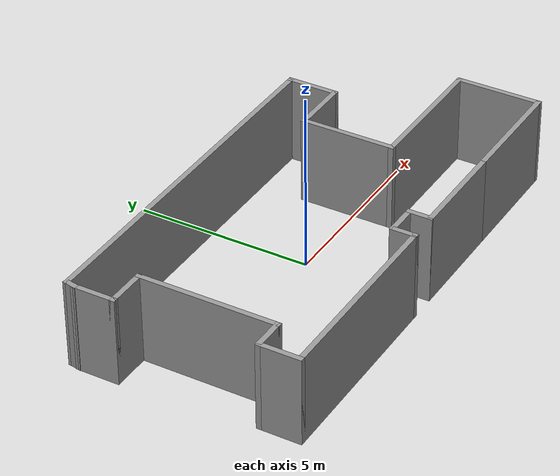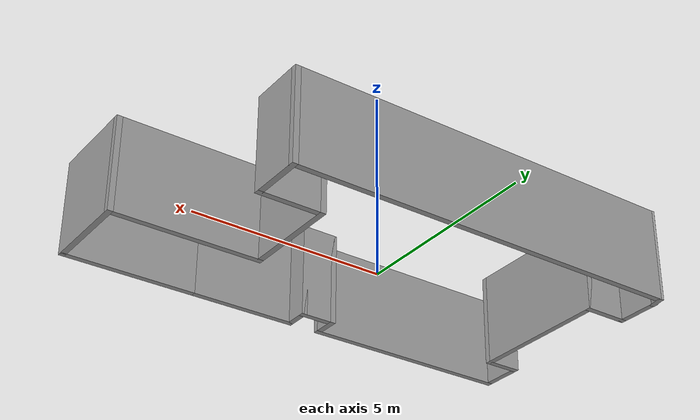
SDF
<?xml version='1.0'?>
<sdf version='1.7'>
  <model name='building_floorplan'>
    <pose>0 0 0 0 -0 0</pose>
    <link name='Wall_53'>
      <collision name='Wall_53_Collision'>
        <geometry>
          <box>
            <size>1.25 0.15 2.5</size>
          </box>
        </geometry>
        <pose>0 0 1.25 0 -0 0</pose>
      </collision>
      <visual name='Wall_53_Visual'>
        <pose>0 0 1.25 0 -0 0</pose>
        <geometry>
          <box>
            <size>1.25 0.15 2.5</size>
          </box>
        </geometry>
        <material>
          <script>
            <uri>file://media/materials/scripts/gazebo.material</uri>
            <name>Gazebo/Grey</name>
          </script>
          <ambient>1 1 1 1</ambient>
        </material>
        <meta>
          <layer>0</layer>
        </meta>
      </visual>
      <pose>-6.44337 2.08185 0 0 -0 -1.5708</pose>
    </link>
    <link name='Wall_54'>
      <collision name='Wall_54_Collision'>
        <geometry>
          <box>
            <size>1.25 0.15 2.5</size>
          </box>
        </geometry>
        <pose>0 0 1.25 0 -0 0</pose>
      </collision>
      <visual name='Wall_54_Visual'>
        <pose>0 0 1.25 0 -0 0</pose>
        <geometry>
          <box>
            <size>1.25 0.15 2.5</size>
          </box>
        </geometry>
        <material>
          <script>
            <uri>file://media/materials/scripts/gazebo.material</uri>
            <name>Gazebo/Grey</name>
          </script>
          <ambient>1 1 1 1</ambient>
        </material>
        <meta>
          <layer>0</layer>
        </meta>
      </visual>
      <pose>-5.89337 1.53185 0 0 -0 0</pose>
    </link>
    <link name='Wall_55'>
      <collision name='Wall_55_Collision'>
        <geometry>
          <box>
            <size>4 0.15 2.5</size>
          </box>
        </geometry>
        <pose>0 0 1.25 0 -0 0</pose>
      </collision>
      <visual name='Wall_55_Visual'>
        <pose>0 0 1.25 0 -0 0</pose>
        <geometry>
          <box>
            <size>4 0.15 2.5</size>
          </box>
        </geometry>
        <material>
          <script>
            <uri>file://media/materials/scripts/gazebo.material</uri>
            <name>Gazebo/Grey</name>
          </script>
          <ambient>1 1 1 1</ambient>
        </material>
        <meta>
          <layer>0</layer>
        </meta>
      </visual>
      <pose>-5.34337 -0.39315 0 0 -0 -1.5708</pose>
    </link>
    <link name='Wall_56'>
      <collision name='Wall_56_Collision'>
        <geometry>
          <box>
            <size>1 0.15 2.5</size>
          </box>
        </geometry>
        <pose>0 0 1.25 0 -0 0</pose>
      </collision>
      <visual name='Wall_56_Visual'>
        <pose>0 0 1.25 0 -0 0</pose>
        <geometry>
          <box>
            <size>1 0.15 2.5</size>
          </box>
        </geometry>
        <material>
          <script>
            <uri>file://media/materials/scripts/gazebo.material</uri>
            <name>Gazebo/Grey</name>
          </script>
          <ambient>1 1 1 1</ambient>
        </material>
        <meta>
          <layer>0</layer>
        </meta>
      </visual>
      <pose>-5.76837 -2.31815 0 0 -0 3.14159</pose>
    </link>
    <link name='Wall_57'>
      <collision name='Wall_57_Collision'>
        <geometry>
          <box>
            <size>1.25 0.15 2.5</size>
          </box>
        </geometry>
        <pose>0 0 1.25 0 -0 0</pose>
      </collision>
      <visual name='Wall_57_Visual'>
        <pose>0 0 1.25 0 -0 0</pose>
        <geometry>
          <box>
            <size>1.25 0.15 2.5</size>
          </box>
        </geometry>
        <material>
          <script>
            <uri>file://media/materials/scripts/gazebo.material</uri>
            <name>Gazebo/Grey</name>
          </script>
          <ambient>1 1 1 1</ambient>
        </material>
        <meta>
          <layer>0</layer>
        </meta>
      </visual>
      <pose>-6.19337 -2.86815 0 0 -0 -1.5708</pose>
    </link>
    <link name='Wall_58'>
      <collision name='Wall_58_Collision'>
        <geometry>
          <box>
            <size>5.75 0.15 2.5</size>
          </box>
        </geometry>
        <pose>0 0 1.25 0 -0 0</pose>
      </collision>
      <visual name='Wall_58_Visual'>
        <pose>0 0 1.25 0 -0 0</pose>
        <geometry>
          <box>
            <size>5.75 0.15 2.5</size>
          </box>
        </geometry>
        <material>
          <script>
            <uri>file://media/materials/scripts/gazebo.material</uri>
            <name>Gazebo/Grey</name>
          </script>
          <ambient>1 1 1 1</ambient>
        </material>
        <meta>
          <layer>0</layer>
        </meta>
      </visual>
      <pose>-3.39337 -3.41815 0 0 -0 0</pose>
    </link>
    <link name='Wall_59'>
      <collision name='Wall_59_Collision'>
        <geometry>
          <box>
            <size>0.75 0.15 2.5</size>
          </box>
        </geometry>
        <pose>0 0 1.25 0 -0 0</pose>
      </collision>
      <visual name='Wall_59_Visual'>
        <pose>0 0 1.25 0 -0 0</pose>
        <geometry>
          <box>
            <size>0.75 0.15 2.5</size>
          </box>
        </geometry>
        <material>
          <script>
            <uri>file://media/materials/scripts/gazebo.material</uri>
            <name>Gazebo/Grey</name>
          </script>
          <ambient>1 1 1 1</ambient>
        </material>
        <meta>
          <layer>0</layer>
        </meta>
      </visual>
      <pose>-0.593374 -3.11815 0 0 -0 1.5708</pose>
    </link>
    <link name='Wall_60'>
      <collision name='Wall_60_Collision'>
        <geometry>
          <box>
            <size>1 0.15 2.5</size>
          </box>
        </geometry>
        <pose>0 0 1.25 0 -0 0</pose>
      </collision>
      <visual name='Wall_60_Visual'>
        <pose>0 0 1.25 0 -0 0</pose>
        <geometry>
          <box>
            <size>1 0.15 2.5</size>
          </box>
        </geometry>
        <material>
          <script>
            <uri>file://media/materials/scripts/gazebo.material</uri>
            <name>Gazebo/Grey</name>
          </script>
          <ambient>1 1 1 1</ambient>
        </material>
        <meta>
          <layer>0</layer>
        </meta>
      </visual>
      <pose>-0.168374 -2.81815 0 0 -0 0</pose>
    </link>
    <link name='Wall_61'>
      <collision name='Wall_61_Collision'>
        <geometry>
          <box>
            <size>0.75 0.15 2.5</size>
          </box>
        </geometry>
        <pose>0 0 1.25 0 -0 0</pose>
      </collision>
      <visual name='Wall_61_Visual'>
        <pose>0 0 1.25 0 -0 0</pose>
        <geometry>
          <box>
            <size>0.75 0.15 2.5</size>
          </box>
        </geometry>
        <material>
          <script>
            <uri>file://media/materials/scripts/gazebo.material</uri>
            <name>Gazebo/Grey</name>
          </script>
          <ambient>1 1 1 1</ambient>
        </material>
        <meta>
          <layer>0</layer>
        </meta>
      </visual>
      <pose>0.256626 -3.11815 0 0 -0 -1.5708</pose>
    </link>
    <link name='Wall_62'>
      <collision name='Wall_62_Collision'>
        <geometry>
          <box>
            <size>3 0.15 2.5</size>
          </box>
        </geometry>
        <pose>0 0 1.25 0 -0 0</pose>
      </collision>
      <visual name='Wall_62_Visual'>
        <pose>0 0 1.25 0 -0 0</pose>
        <geometry>
          <box>
            <size>3 0.15 2.5</size>
          </box>
        </geometry>
        <material>
          <script>
            <uri>file://media/materials/scripts/gazebo.material</uri>
            <name>Gazebo/Grey</name>
          </script>
          <ambient>1 1 1 1</ambient>
        </material>
        <meta>
          <layer>0</layer>
        </meta>
      </visual>
      <pose>1.68163 -3.41815 0 0 -0 0</pose>
    </link>
    <link name='Wall_63'>
      <collision name='Wall_63_Collision'>
        <geometry>
          <box>
            <size>3.5 0.15 2.5</size>
          </box>
        </geometry>
        <pose>0 0 1.25 0 -0 0</pose>
      </collision>
      <visual name='Wall_63_Visual'>
        <pose>0 0 1.25 0 -0 0</pose>
        <geometry>
          <box>
            <size>3.5 0.15 2.5</size>
          </box>
        </geometry>
        <material>
          <script>
            <uri>file://media/materials/scripts/gazebo.material</uri>
            <name>Gazebo/Grey</name>
          </script>
          <ambient>1 1 1 1</ambient>
        </material>
        <meta>
          <layer>0</layer>
        </meta>
      </visual>
      <pose>4.78163 -3.41815 0 0 -0 0</pose>
    </link>
    <link name='Wall_64'>
      <collision name='Wall_64_Collision'>
        <geometry>
          <box>
            <size>2.5 0.15 2.5</size>
          </box>
        </geometry>
        <pose>0 0 1.25 0 -0 0</pose>
      </collision>
      <visual name='Wall_64_Visual'>
        <pose>0 0 1.25 0 -0 0</pose>
        <geometry>
          <box>
            <size>2.5 0.15 2.5</size>
          </box>
        </geometry>
        <material>
          <script>
            <uri>file://media/materials/scripts/gazebo.material</uri>
            <name>Gazebo/Grey</name>
          </script>
          <ambient>1 1 1 1</ambient>
        </material>
        <meta>
          <layer>0</layer>
        </meta>
      </visual>
      <pose>6.45663 -2.24315 0 0 -0 1.5708</pose>
    </link>
    <link name='Wall_65'>
      <collision name='Wall_65_Collision'>
        <geometry>
          <box>
            <size>4 0.15 2.5</size>
          </box>
        </geometry>
        <pose>0 0 1.25 0 -0 0</pose>
      </collision>
      <visual name='Wall_65_Visual'>
        <pose>0 0 1.25 0 -0 0</pose>
        <geometry>
          <box>
            <size>4 0.15 2.5</size>
          </box>
        </geometry>
        <material>
          <script>
            <uri>file://media/materials/scripts/gazebo.material</uri>
            <name>Gazebo/Grey</name>
          </script>
          <ambient>1 1 1 1</ambient>
        </material>
        <meta>
          <layer>0</layer>
        </meta>
      </visual>
      <pose>4.53163 -1.06815 0 0 -0 3.14159</pose>
    </link>
    <link name='Wall_66'>
      <collision name='Wall_66_Collision'>
        <geometry>
          <box>
            <size>2.75 0.15 2.5</size>
          </box>
        </geometry>
        <pose>0 0 1.25 0 -0 0</pose>
      </collision>
      <visual name='Wall_66_Visual'>
        <pose>0 0 1.25 0 -0 0</pose>
        <geometry>
          <box>
            <size>2.75 0.15 2.5</size>
          </box>
        </geometry>
        <material>
          <script>
            <uri>file://media/materials/scripts/gazebo.material</uri>
            <name>Gazebo/Grey</name>
          </script>
          <ambient>1 1 1 1</ambient>
        </material>
        <meta>
          <layer>0</layer>
        </meta>
      </visual>
      <pose>2.60663 0.23185 0 0 -0 1.5708</pose>
    </link>
    <link name='Wall_67'>
      <collision name='Wall_67_Collision'>
        <geometry>
          <box>
            <size>1.75 0.15 2.5</size>
          </box>
        </geometry>
        <pose>0 0 1.25 0 -0 0</pose>
      </collision>
      <visual name='Wall_67_Visual'>
        <pose>0 0 1.25 0 -0 0</pose>
        <geometry>
          <box>
            <size>1.75 0.15 2.5</size>
          </box>
        </geometry>
        <material>
          <script>
            <uri>file://media/materials/scripts/gazebo.material</uri>
            <name>Gazebo/Grey</name>
          </script>
          <ambient>1 1 1 1</ambient>
        </material>
        <meta>
          <layer>0</layer>
        </meta>
      </visual>
      <pose>3.40663 1.53185 0 0 -0 0</pose>
    </link>
    <link name='Wall_68'>
      <collision name='Wall_68_Collision'>
        <geometry>
          <box>
            <size>1.5 0.15 2.5</size>
          </box>
        </geometry>
        <pose>0 0 1.25 0 -0 0</pose>
      </collision>
      <visual name='Wall_68_Visual'>
        <pose>0 0 1.25 0 -0 0</pose>
        <geometry>
          <box>
            <size>1.5 0.15 2.5</size>
          </box>
        </geometry>
        <material>
          <script>
            <uri>file://media/materials/scripts/gazebo.material</uri>
            <name>Gazebo/Grey</name>
          </script>
          <ambient>1 1 1 1</ambient>
        </material>
        <meta>
          <layer>0</layer>
        </meta>
      </visual>
      <pose>4.20663 2.20685 0 0 -0 1.5708</pose>
    </link>
    <link name='Wall_69'>
      <collision name='Wall_69_Collision'>
        <geometry>
          <box>
            <size>10.75 0.15 2.5</size>
          </box>
        </geometry>
        <pose>0 0 1.25 0 -0 0</pose>
      </collision>
      <visual name='Wall_69_Visual'>
        <pose>0 0 1.25 0 -0 0</pose>
        <geometry>
          <box>
            <size>10.75 0.15 2.5</size>
          </box>
        </geometry>
        <material>
          <script>
            <uri>file://media/materials/scripts/gazebo.material</uri>
            <name>Gazebo/Grey</name>
          </script>
          <ambient>1 1 1 1</ambient>
        </material>
        <meta>
          <layer>0</layer>
        </meta>
      </visual>
      <pose>-1.09337 2.88185 0 0 -0 3.14159</pose>
    </link>
    <link name='Wall_70'>
      <collision name='Wall_70_Collision'>
        <geometry>
          <box>
            <size>0.404951 0.15 2.5</size>
          </box>
        </geometry>
        <pose>0 0 1.25 0 -0 0</pose>
      </collision>
      <visual name='Wall_70_Visual'>
        <pose>0 0 1.25 0 -0 0</pose>
        <geometry>
          <box>
            <size>0.404951 0.15 2.5</size>
          </box>
        </geometry>
        <material>
          <script>
            <uri>file://media/materials/scripts/gazebo.material</uri>
            <name>Gazebo/Grey</name>
          </script>
          <ambient>1 1 1 1</ambient>
        </material>
        <meta>
          <layer>0</layer>
        </meta>
      </visual>
      <pose>-6.41837 2.75685 0 0 -0 -1.76819</pose>
    </link>
    <static>1</static>
  </model>
</sdf>
